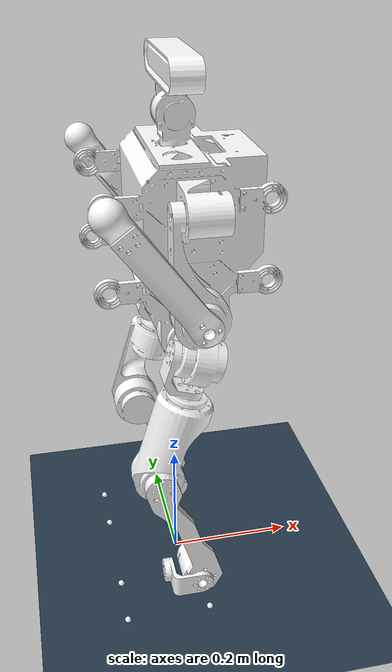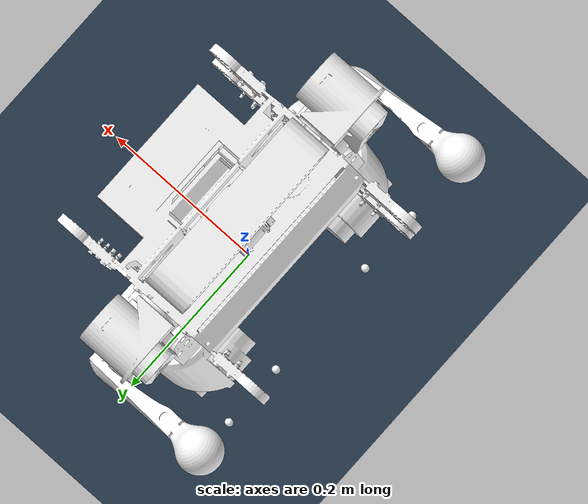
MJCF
<mujoco model="MOSC">
    <compiler angle="radian" />
    <size njmax="500" nconmax="100" />
    <asset>
        <texture name="texplane" type="2d" builtin="checker" rgb1=".2 .3 .4" rgb2=".1 0.15 0.2" width="512" height="512" mark="cross" markrgb=".8 .8 .8" />
        <material name="matplane" reflectance="0." texture="texplane" texrepeat="1 1" texuniform="true" />
        <mesh name="body" file="meshes/body_LowMesh.STL" />
        <mesh name="neck" file="meshes/neck.STL" />
        <mesh name="head" file="meshes/head.STL" />
        <mesh name="Rshoulder" file="meshes/Rshoulder.STL" />
        <mesh name="Rarm" file="meshes/Rarm.STL" />
        <mesh name="Rhand" file="meshes/Rhand.STL" />
        <mesh name="Lshoulder" file="meshes/Lshoulder.STL" />
        <mesh name="Larm" file="meshes/Larm.STL" />
        <mesh name="Lhand" file="meshes/Lhand.STL" />
        <mesh name="Rhip" file="meshes/Rhip.STL" />
        <mesh name="Rlap" file="meshes/Rlap.STL" />
        <mesh name="Rleg1" file="meshes/Rleg1.STL" />
        <mesh name="Rleg2" file="meshes/Rleg2.STL" />
        <mesh name="Rankle" file="meshes/Rankle.STL" />
        <mesh name="Rfoot" file="meshes/Rfoot.STL" />
        <mesh name="Lhip" file="meshes/Lhip.STL" />
        <mesh name="Llap" file="meshes/Llap.STL" />
        <mesh name="Lleg1" file="meshes/Lleg1.STL" />
        <mesh name="Lleg2" file="meshes/Lleg2.STL" />
        <mesh name="Lankle" file="meshes/Lankle.STL" />
        <mesh name="Lfoot" file="meshes/Lfoot.STL" />
    </asset>
    <default>
		<joint limited="false" />
		<motor ctrllimited="true" />
		<geom condim="4" contype="1" conaffinity="15" friction="0.9 0.2 0.2" />
	</default>
    <worldbody>
    <light directional="true" diffuse=".4 .4 .4" specular="0.1 0.1 0.1" pos="0 0 5.0" dir="0 0 -1" castshadow="false" />
	<light directional="true" diffuse=".6 .6 .6" specular="0.2 0.2 0.2" pos="0 0 4" dir="0 0 -1" />
	<geom name="ground" type="plane" size="0 0 1" pos="0.001 0 0" quat="1 0 0 0" material="matplane" condim="1" conaffinity="15" />

    <body name="base_link" pos="0.0 0.0 0.49" quat="0 0 0 1">
        <joint type='ball' limited='false' />
        <site name='imu' size='0.01' pos='0.0 0 0.0'/>
        <joint type='slide' axis='1 0 0' limited='false' />
        <joint type='slide' axis='0 1 0' limited='false' />
        <joint type='slide' axis='0 0 1' limited='false' />

        <geom type="mesh" rgba="1 1 1 1" mesh="body" />
        <geom pos="-0.00499961 0 0.2301" quat="0.707107 0 0 0.707107" type="mesh" rgba="1 1 1 1" mesh="neck" />
        <geom pos="-0.00499961 -0.0191493 0.2726" quat="0.707107 0.707107 0 0" type="mesh" rgba="1 1 1 1" mesh="head" />
        <geom pos="-0.01 -0.101 0.1821" quat="0 0 0.707107 0.707107" type="mesh" rgba="1 1 1 1" mesh="Rshoulder" />
        <geom pos="0.0109999 -0.15 0.182048" quat="0 -0.707107 0 0.707107" type="mesh" rgba="1 1 1 1" mesh="Rarm" />
        <geom pos="-0.0100001 -0.18135 0.0420479" quat="0.316831 0.316831 0.632153 -0.632153" type="mesh" rgba="1 1 1 1" mesh="Rhand" />
        <geom pos="-0.01 0.101 0.1821" quat="0 0 0.707107 0.707107" type="mesh" rgba="1 1 1 1" mesh="Lshoulder" />
        <geom pos="0.011 0.15 0.1821" quat="-0.707107 0 0.707107 0" type="mesh" rgba="1 1 1 1" mesh="Larm" />
        <geom pos="-0.01 0.18135 0.0421" quat="0.316831 0.316831 0.632153 -0.632153" type="mesh" rgba="1 1 1 1" mesh="Lhand" />
        <body name="Rhip" pos="-0.015 -0.0672 -0.0399" quat="0.105669 -0.105669 0.699167 0.699167">
            <inertial pos="0.00046534 -4.8738e-06 -0.043634" quat="0.998704 0.00021969 0.0505891 0.00561917" mass="0.68971" diaginertia="0.000521793 0.000513959 0.000411928" />
            <joint name="b_Rh" pos="0 0 0" axis="0 0 1" limited="true" range="-3.14 3.14" />
            <geom type="mesh" rgba="1 1 1 1" mesh="Rhip" />
            <body name="Rlap" pos="-0.0312 0 -0.0493" quat="0.707107 0 0.707107 0">
                <inertial pos="0 -0.03086 0.0069068" quat="0.888924 0.458055 0 0" mass="0.12125" diaginertia="9.9252e-05 9.7938e-05 3.1213e-05" />
                <joint name="Rh_Rl" pos="0 0 0" axis="0 0 -1" limited="true" range="-3.14 3.14" />
                <geom type="mesh" rgba="1 1 1 1" mesh="Rlap" />
                <body name="Rleg1" pos="0 -0.057 0.032" quat="0 0 0.707107 0.707107">
                    <inertial pos="0.0033299 -0.00182044 -0.0895096" quat="0.927379 0.0234381 -0.0606723 -0.368425" mass="1.39974" diaginertia="0.00599239 0.00589001 0.00101771" />
                    <joint name="Rl_Rl1" pos="0 0 0" axis="0 0 -1" limited="true" range="-3.14 3.14" />
                    <geom type="mesh" rgba="1 1 1 1" mesh="Rleg1" />
                    <body name="Rleg2" pos="-0.0162 0 -0.1532" quat="0.329908 0.625428 -0.329908 -0.625428">
                        <inertial pos="-0.0025189 -0.14339 -0.0055217" quat="0.622039 0.722366 -0.229813 0.196066" mass="0.66458" diaginertia="0.00438581 0.00431472 0.00028574" />
                        <joint name="Rl1_Rl2" pos="0 0 0" axis="0 0 -1" limited="true" range="-3.14 3.14" />
                        <geom type="mesh" rgba="1 1 1 1" mesh="Rleg2" />
                        <body name="Rankle" pos="0 -0.2 0.0098" quat="0.988771 0 0 0.149438">
                            <inertial pos="0.026526 0 -0.0036121" quat="0.323256 0.628892 0.628892 0.323256" mass="0.099798" diaginertia="7.8396e-05 7.63351e-05 2.41339e-05" />
                            <joint name="Rl2_Ra" pos="0 0 0" axis="0 0 -1" limited="true" range="-3.14 3.14" />
                            <geom type="mesh" rgba="1 1 1 1" mesh="Rankle" />
                            <body name="Rfoot" pos="0.0545 0 -0.026" quat="0.707107 0 0.707107 0">
                                <inertial pos="0 -0.0165148 0.0227182" quat="0.973791 -0.227447 0 0" mass="0.644241" diaginertia="0.000982839 0.000902925 0.000553376" />
                                <joint name="Ra_Rf" pos="0 0 0" axis="0 0 1" limited="true" range="-3.14 3.14" />
                                <geom size="0.005" pos="-0.04 -0.055 0.068" rgba="1 1 1 1" />
                                <geom size="0.005" pos="0.04 -0.055 0.068" rgba="1 1 1 1" />
                                <geom size="0.005" pos="-0.04 -0.055 -0.067" rgba="1 1 1 1" />
                                <geom size="0.005" pos="0.04 -0.055 -0.067" rgba="1 1 1 1" />
                            </body>
                        </body>
                    </body>
                </body>
            </body>
        </body>
        <body name="Lhip" pos="-0.015 0.0672 -0.0399" quat="0.105669 -0.105669 0.699167 0.699167">
            <inertial pos="0.00046506 4.8751e-06 0.043645" quat="0.998699 0.00022094 -0.0506725 -0.00563274" mass="0.68953" diaginertia="0.000521464 0.000513649 0.000411857" />
            <joint name="b_Lh" pos="0 0 0" axis="0 0 -1" limited="true" range="-3.14 3.14" />
            <geom type="mesh" rgba="1 1 1 1" mesh="Lhip" />
            <body name="Llap" pos="-0.0312 0 0.0493" quat="0.707107 0 0.707107 0">
                <inertial pos="0 -0.03086 0.0069068" quat="0.888924 0.458055 0 0" mass="0.12125" diaginertia="9.9252e-05 9.7938e-05 3.1213e-05" />
                <joint name="Lh_Ll" pos="0 0 0" axis="0 0 -1" limited="true" range="-3.14 3.14" />
                <geom type="mesh" rgba="1 1 1 1" mesh="Llap" />
                <body name="Lleg1" pos="0 -0.057 0.032" quat="0 0 -0.707107 -0.707107">
                    <inertial pos="-0.00334622 -0.00180411 -0.0895144" quat="0.927406 0.0233212 0.0606357 0.368371" mass="1.39974" diaginertia="0.00599321 0.00589066 0.00101782" />
                    <joint name="Ll_Ll1" pos="0 0 0" axis="0 0 -1" limited="true" range="-3.14 3.14" />
                    <geom type="mesh" rgba="1 1 1 1" mesh="Lleg1" />
                    <body name="Lleg2" pos="0.0162 0 -0.1532" quat="0.329908 0.625428 0.329908 0.625428">
                        <inertial pos="0.0025362 -0.14342 -0.0055217" quat="0.622905 0.723389 0.22658 -0.193284" mass="0.66458" diaginertia="0.00438854 0.00431768 0.000284441" />
                        <joint name="Ll1_Ll2" pos="0 0 0" axis="0 0 -1" limited="true" range="-3.14 3.14" />
                        <geom type="mesh" rgba="1 1 1 1" mesh="Lleg2" />
                        <body name="Lankle" pos="0 -0.2 0.0098" quat="0.988771 0 0 -0.149438">
                            <inertial pos="-0.026526 0 -0.0036121" quat="0.628892 0.323256 0.323256 0.628892" mass="0.099798" diaginertia="7.8396e-05 7.63351e-05 2.41339e-05" />
                            <joint name="Ll2_La" pos="0 0 0" axis="0 0 -1" limited="true" range="-3.14 3.14" />
                            <geom type="mesh" rgba="1 1 1 1" mesh="Lankle" />
                            <body name="Lfoot" pos="-0.0545 0 -0.026" quat="0.707107 0 0.707107 0">
                                <inertial pos="0 -0.0165148 -0.0227182" quat="0.973791 0.227447 0 0" mass="0.644241" diaginertia="0.000982839 0.000902925 0.000553376" />
                                <joint name="La_Lf" pos="0 0 0" axis="0 0 -1" limited="true" range="-3.14 3.14" />
                                <geom size="0.005" pos="-0.04 -0.055 0.068" rgba="1 1 1 1" />
                                <geom size="0.005" pos="0.04 -0.055 0.068" rgba="1 1 1 1" />
                                <geom size="0.005" pos="-0.04 -0.055 -0.067" rgba="1 1 1 1" />
                                <geom size="0.005" pos="0.04 -0.055 -0.067" rgba="1 1 1 1" />
                            </body>
                        </body>
                    </body>
                </body>
            </body>
        </body>
    </body>
    </worldbody>
	    <actuator>
		<motor name="b_Lh_joint" joint="b_Lh" gear="1" ctrllimited="true" ctrlrange="-200 200" />
		<motor name="Lh_Ll_joint" joint="Lh_Ll" gear="1" ctrllimited="true" ctrlrange="-200 200" />
		<motor name="Ll_Ll1_joint" joint="Ll_Ll1" gear="1" ctrllimited="true" ctrlrange="-200 200" />
		<motor name="Ll1_Ll2_joint" joint="Ll1_Ll2" gear="1" ctrllimited="true" ctrlrange="-200 200" />
		<motor name="Ll2_La_joint" joint="Ll2_La" gear="1" ctrllimited="true" ctrlrange="-200 200" />
		<motor name="La_Lf_joint" joint="La_Lf" gear="1" ctrllimited="true" ctrlrange="-200 200" />
		<motor name="b_Rh_joint" joint="b_Rh" gear="1" ctrllimited="true" ctrlrange="-200 200" />
		<motor name="Rh_Rl_joint" joint="Rh_Rl" gear="1" ctrllimited="true" ctrlrange="-200 200" />
		<motor name="Rl_Rl1_joint" joint="Rl_Rl1" gear="1" ctrllimited="true" ctrlrange="-200 200" />
		<motor name="Rl1_Rl2_joint" joint="Rl1_Rl2" gear="1" ctrllimited="true" ctrlrange="-200 200" />
		<motor name="Rl2_Ra_joint" joint="Rl2_Ra" gear="1" ctrllimited="true" ctrlrange="-200 200" />
		<motor name="Ra_Rf_joint" joint="Ra_Rf" gear="1" ctrllimited="true" ctrlrange="-200 200" />
		</actuator>
		<sensor>
		<!-- Position sensors -->
		<actuatorpos name="b_Lh_joint_p" actuator="b_Lh_joint" user="13" noise="1e-3"/>
		<actuatorpos name="b_Rh_joint_p" actuator="b_Rh_joint" user="13" noise="1e-3"/>
		<actuatorpos name="Lh_Ll_joint_p" actuator="Lh_Ll_joint" user="13" noise="1e-3"/>
		<actuatorpos name="Rh_Rl_joint_p" actuator="Rh_Rl_joint" user="13" noise="1e-3"/>
		<actuatorpos name="Ll_Ll1_joint_p" actuator="Ll_Ll1_joint" user="13" noise="1e-3"/>
		<actuatorpos name="Rl_Rl1_joint_p" actuator="Rl_Rl1_joint" user="13" noise="1e-3"/>
		<actuatorpos name="Ll1_Ll2_joint_p" actuator="Ll1_Ll2_joint" user="13" noise="1e-3"/>
		<actuatorpos name="Rl1_Rl2_joint_p" actuator="Rl1_Rl2_joint" user="13" noise="1e-3"/>
		<actuatorpos name="Ll2_La_joint_p" actuator="Ll2_La_joint" user="13" noise="1e-3"/>
		<actuatorpos name="Rl2_Ra_joint_p" actuator="Rl2_Ra_joint" user="13" noise="1e-3"/>
		<actuatorpos name="La_Lf_joint_p" actuator="La_Lf_joint" user="13" noise="1e-3"/>
		<actuatorpos name="Ra_Rf_joint_p" actuator="Ra_Rf_joint" user="13" noise="1e-3"/>
		<!-- Velocity sensors -->
		<actuatorvel name="b_Lh_joint_v" actuator="b_Lh_joint" user="13" noise="1e-3"/>
		<actuatorvel name="b_Rh_joint_v" actuator="b_Rh_joint" user="13" noise="1e-3"/>
		<actuatorvel name="Lh_Ll_joint_v" actuator="Lh_Ll_joint" user="13" noise="1e-3"/>
		<actuatorvel name="Rh_Rl_joint_v" actuator="Rh_Rl_joint" user="13" noise="1e-3"/>
		<actuatorvel name="Ll_Ll1_joint_v" actuator="Ll_Ll1_joint" user="13" noise="1e-3"/>
		<actuatorvel name="Rl_Rl1_joint_v" actuator="Rl_Rl1_joint" user="13" noise="1e-3"/>
		<actuatorvel name="Ll1_Ll2_joint_v" actuator="Ll1_Ll2_joint" user="13" noise="1e-3"/>
		<actuatorvel name="Rl1_Rl2_joint_v" actuator="Rl1_Rl2_joint" user="13" noise="1e-3"/>
		<actuatorvel name="Ll2_La_joint_v" actuator="Ll2_La_joint" user="13" noise="1e-3"/>
		<actuatorvel name="Rl2_Ra_joint_v" actuator="Rl2_Ra_joint" user="13" noise="1e-3"/>
		<actuatorvel name="La_Lf_joint_v" actuator="La_Lf_joint" user="13" noise="1e-3"/>
		<actuatorvel name="Ra_Rf_joint_v" actuator="Ra_Rf_joint" user="13" noise="1e-3"/>

		<framequat name="orientation" objtype="site" noise="0.001" objname="imu" />
		<framepos name="position" objtype="site" noise="0.001" objname="imu" />
		<gyro name="angular-velocity" site="imu" noise="0.005" cutoff="34.9" />
		<velocimeter name="linear-velocity" site="imu" noise="0.001" cutoff="30" />

	</sensor>
</mujoco>
